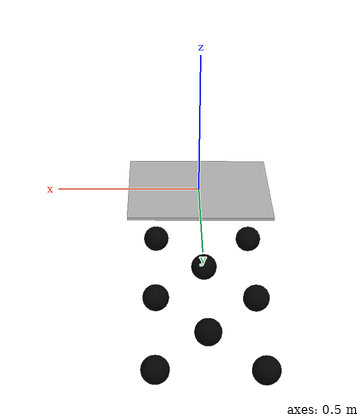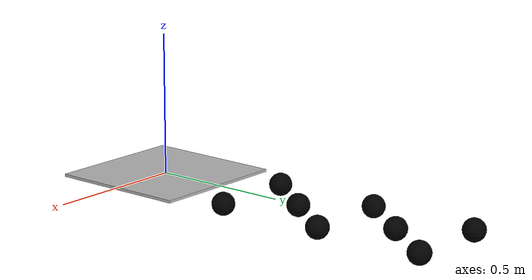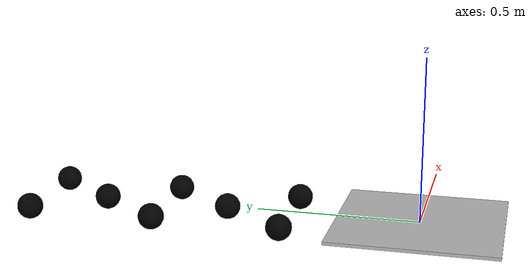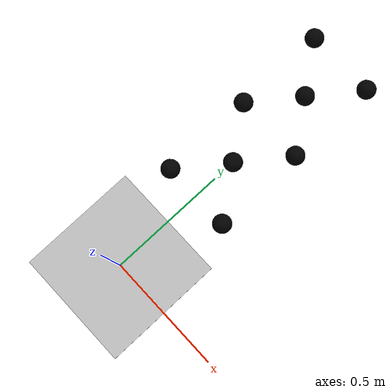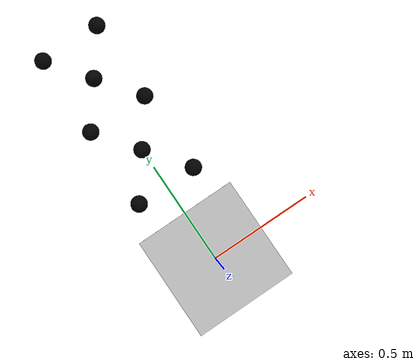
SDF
<?xml version="1.0" ?>
<sdf version="1.6">
  <model name="chess_board">
    <pose>0 0 0 0 0 0</pose>
    <static>true</static>

    <link name="board">

      <visual name="visual">
        <cast_shadows>false</cast_shadows>
        <geometry>
          <box>
            <size>0.5 0.5 .01</size>
          </box>
        </geometry>
        <material>
          <script>
            <uri>model://chess_board/materials/scripts</uri>
            <uri>model://chess_board/materials/textures</uri>
            <name>Cube/chess_board</name>
          </script>
        </material>
      </visual>
    </link>

    <!-- 添加12个黑色小球 -->
    <!-- 每个球的直径设为方格的1/4 -->

    <link name="sphere1">
      <pose>0.15 0.4 0 0 0 0</pose>
      <visual name="visual">
        <geometry>
          <sphere>
            <radius>0.04</radius>
          </sphere>
        </geometry>
        <material>
          <ambient>0 0 0 1</ambient>
          <diffuse>0 0 0 1</diffuse>
          <specular>0 0 0 1</specular>
          <emissive>0 0 0 1</emissive>
        </material>
      </visual>
    </link>

    <link name="sphere1-2">
      <pose>-0.15 0.4 0 0 0 0</pose>
      <visual name="visual">
        <geometry>
          <sphere>
            <radius>0.04</radius>
          </sphere>
        </geometry>
        <material>
          <ambient>0 0 0 1</ambient>
          <diffuse>0 0 0 1</diffuse>
          <specular>0 0 0 1</specular>
          <emissive>0 0 0 1</emissive>
        </material>
      </visual>
    </link>

    <link name="sphere2">
      <pose>0 0.6 0 0 0 0</pose>
      <visual name="visual">
        <geometry>
          <sphere>
            <radius>0.04</radius>
          </sphere>
        </geometry>
        <material>
          <ambient>0 0 0 1</ambient>
          <diffuse>0 0 0 1</diffuse>
          <specular>0 0 0 1</specular>
          <emissive>0 0 0 1</emissive>
        </material>
      </visual>
    </link>

    <link name="sphere3-1">
      <pose>0.15 0.8 0 0 0 0</pose>
      <visual name="visual">
        <geometry>
          <sphere>
            <radius>0.04</radius>
          </sphere>
        </geometry>
        <material>
          <ambient>0 0 0 1</ambient>
          <diffuse>0 0 0 1</diffuse>
          <specular>0 0 0 1</specular>
          <emissive>0 0 0 1</emissive>
        </material>
      </visual>
    </link>

    <link name="sphere3-2">
      <pose>-0.15 0.8 0 0 0 0</pose>
      <visual name="visual">
        <geometry>
          <sphere>
            <radius>0.04</radius>
          </sphere>
        </geometry>
        <material>
          <ambient>0 0 0 1</ambient>
          <diffuse>0 0 0 1</diffuse>
          <specular>0 0 0 1</specular>
          <emissive>0 0 0 1</emissive>
        </material>
      </visual>
    </link>

    <link name="sphere4">
      <pose>0 1 0 0 0 0</pose>
      <visual name="visual">
        <geometry>
          <sphere>
            <radius>0.04</radius>
          </sphere>
        </geometry>
        <material>
          <ambient>0 0 0 1</ambient>
          <diffuse>0 0 0 1</diffuse>
          <specular>0 0 0 1</specular>
          <emissive>0 0 0 1</emissive>
        </material>
      </visual>
    </link>

     <link name="sphere5-1">
      <pose>0.15 1.2 0 0 0 0</pose>
      <visual name="visual">
        <geometry>
          <sphere>
            <radius>0.04</radius>
          </sphere>
        </geometry>
        <material>
          <ambient>0 0 0 1</ambient>
          <diffuse>0 0 0 1</diffuse>
          <specular>0 0 0 1</specular>
          <emissive>0 0 0 1</emissive>
        </material>
      </visual>
    </link>

    <link name="sphere6-2">
      <pose>-0.15 1.2 0 0 0 0</pose>
      <visual name="visual">
        <geometry>
          <sphere>
            <radius>0.04</radius>
          </sphere>
        </geometry>
        <material>
          <ambient>0 0 0 1</ambient>
          <diffuse>0 0 0 1</diffuse>
          <specular>0 0 0 1</specular>
          <emissive>0 0 0 1</emissive>
        </material>
      </visual>
    </link>

    <surface_props:material>rubber</surface_props:material>
    <surface_props:biofouling_rating>0.1</surface_props:biofouling_rating>
    <surface_props:roughness>0.1</surface_props:roughness>

  </model>
</sdf>
